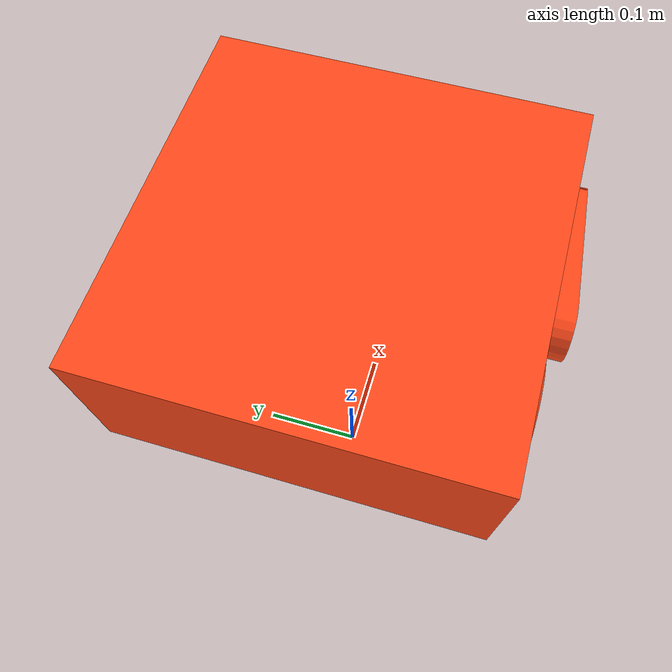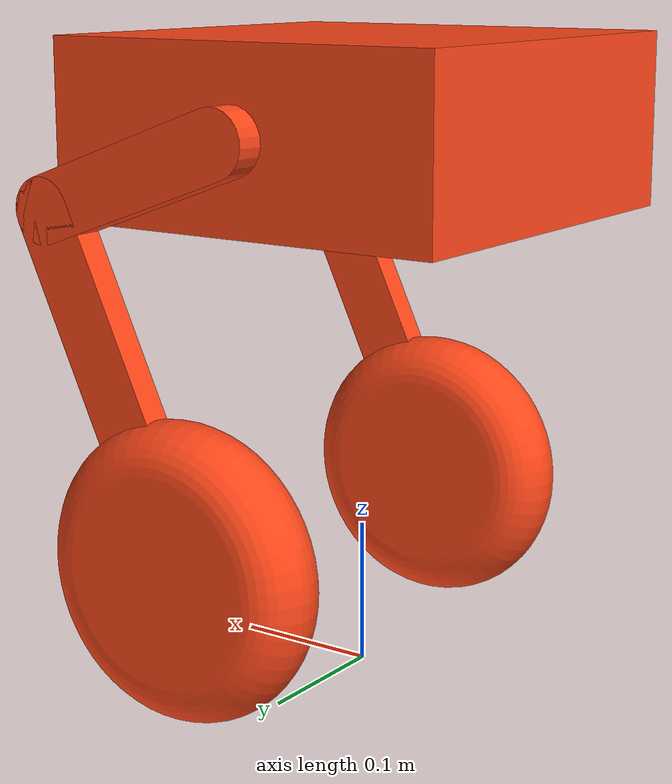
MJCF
<mujoco model="wheel_leg">
  <default>
    <default class="robot">
      <default class="motor">
        <!-- 从URDF恢复：damping=0.5, frictionloss=0.5（髋膝关节） -->
        <!-- 轮子关节(L3/R3)在URDF中damping=0, friction=0，单独在joint里设置 -->
        <joint damping="0.5" frictionloss="0.5" />
        <!-- ctrlrange放开到300（对应URDF effort=300），gear=1 -->
        <motor gear="1" ctrllimited="true" ctrlrange="-300 300" />
      </default>
      <default class="visual">
        <geom material="visualgeom" contype="0" conaffinity="0" group="2" />
      </default>
      <default class="collision">
        <geom material="collision_material" condim="3" contype="0" conaffinity="1"
              priority="1" group="1" solref="0.005 1" solimp="0.99 0.999 1e-05"
              friction="1 0.01 0.01" />
      </default>
    </default>
  </default>

  <compiler angle="radian" meshdir="../meshes_obj" />

  <asset>
    <material name="visualgeom"        rgba="0.52941 0.54902 0.54902 1" />
    <material name="default_material"  rgba="0.7 0.7 0.7 1" />
    <material name="collision_material" rgba="1.0 0.28 0.1 0.9" />
    <mesh name="base_link.obj" file="base_link.obj" />
    <mesh name="L1_link.obj"   file="L1_link.obj" />
    <mesh name="L2_link.obj"   file="L2_link.obj" />
    <mesh name="L3_link.obj"   file="L3_link.obj" />
    <mesh name="R1_link.obj"   file="R1_link.obj" />
    <mesh name="R2_link.obj"   file="R2_link.obj" />
    <mesh name="R3_link.obj"   file="R3_link.obj" />
  </asset>

  <worldbody>
    <body name="base_link" pos="0 0 0.38" quat="1 0 0 0" childclass="robot">
      <freejoint name="floating_base" />
      <!-- base_link 惯性：从URDF直接取 -->
      <inertial pos="0 0 0" quat="1 0 0 0" mass="4.6328"
                diaginertia="0.056559 0.057098 0.091137" />
      <geom name="base_link_collision" pos="0 0 0" quat="1 0 0 0"
            type="mesh" mesh="base_link.obj" class="collision" />
      <geom name="base_link_visual"    pos="0 0 0" quat="1 0 0 0"
            material="visualgeom" type="mesh" mesh="base_link.obj" class="visual" />

      <!-- ===== 左腿 ===== -->
      <!-- L1_joint: xyz="0 0.143 0" rpy="-1.5708 0.34907 0"
           => quat w=0.69636 x=-0.69637 y=0.12279 z=0.12279 -->
      <body name="L1_link" pos="0 0.143 0"
            quat="0.6963627066 -0.6963652645 0.1227890233 0.1227894743">
        <!-- L1_joint: revolute, range=-0.34905~1.22169, damping/friction由default继承 -->
        <joint name="L1_joint" type="hinge" class="motor"
               range="-0.34905 1.22169" axis="0 0 1" ref="0" />
        <inertial pos="0.075 0 0.01" quat="1 0 0 0" mass="1.3011"
                  diaginertia="0.00025247 0.0038001 0.0039659" />
        <geom name="L1_link_collision" pos="0 0 0" quat="1 0 0 0"
              type="mesh" mesh="L1_link.obj" class="collision" />
        <geom name="L1_link_visual"    pos="0 0 0" quat="1 0 0 0"
              material="visualgeom" type="mesh" mesh="L1_link.obj" class="visual" />

        <!-- L2_joint: xyz="0.15 0 0" rpy="0 0 1.6581"
             => quat w=0.67558 x=0 y=0 z=0.73729 -->
        <body name="L2_link" pos="0.15 0 0"
              quat="0.6755764902 0 0 0.7372899062">
          <!-- L2_joint: revolute, range=-1.570796~1.047197, damping/friction由default继承 -->
          <joint name="L2_joint" type="hinge" class="motor"
                 range="-1.570796 1.047197" axis="0 0 1" ref="0" />
          <inertial pos="0.125 0 0.01" quat="1 0 0 0" mass="2.0031"
                    diaginertia="0.00039433 0.013708 0.013969" />
          <geom name="L2_link_collision" pos="0 0 0" quat="1 0 0 0"
                type="mesh" mesh="L2_link.obj" class="collision" />
          <geom name="L2_link_visual"    pos="0 0 0" quat="1 0 0 0"
                material="visualgeom" type="mesh" mesh="L2_link.obj" class="visual" />

          <!-- L3_joint: xyz="0.25 0 0" rpy="0 0 -2.0071"
               => quat w=0.53731 x=0 y=0 z=-0.84338
               URDF: continuous(无限位), damping=0, friction=0 => 单独覆盖default -->
          <body name="L3_link" pos="0.25 0 0"
                quat="0.5373116856 0 0 -0.8433837517">
            <!-- 轮子关节：无限位，阻尼=0摩擦=0（覆盖default） -->
            <joint name="L3_joint" type="hinge" class="motor"
                   axis="0 0 1" damping="0" frictionloss="0" />
            <inertial pos="0 0 0.01" quat="1 0 0 0" mass="1.6268"
                      diaginertia="0.0040743 0.0040743 0.0072906" />
            <geom name="L3_link_collision" pos="0 0 0" quat="1 0 0 0"
                  type="mesh" mesh="L3_link.obj" class="collision" />
            <geom name="L3_link_visual"    pos="0 0 0" quat="1 0 0 0"
                  material="visualgeom" type="mesh" mesh="L3_link.obj" class="visual" />
          </body>
        </body>
      </body>

      <!-- ===== 右腿 ===== -->
      <!-- R1_joint: xyz="0 -0.143 0" rpy="1.5708 0.34907 0"
           => quat w=0.69636 x=0.69637 y=0.12279 z=-0.12279 -->
      <body name="R1_link" pos="0 -0.143 0"
            quat="0.6963627066 0.6963652645 0.1227890233 -0.1227894743">
        <!-- R1_joint: revolute, range=-1.22169~0.34905, damping/friction由default继承 -->
        <joint name="R1_joint" type="hinge" class="motor"
               range="-1.22169 0.34905" axis="0 0 1" ref="0" />
        <inertial pos="0.075 0 0.01" quat="1 0 0 0" mass="1.3011"
                  diaginertia="0.00025247 0.0038001 0.0039659" />
        <geom name="R1_link_collision" pos="0 0 0" quat="1 0 0 0"
              type="mesh" mesh="R1_link.obj" class="collision" />
        <geom name="R1_link_visual"    pos="0 0 0" quat="1 0 0 0"
              material="visualgeom" type="mesh" mesh="R1_link.obj" class="visual" />

        <!-- R2_joint: xyz="0.15 0 0" rpy="0 0 -1.6581"
             => quat w=0.67558 x=0 y=0 z=-0.73729 -->
        <body name="R2_link" pos="0.15 0 0"
              quat="0.6755764902 0 0 -0.7372899062">
          <!-- R2_joint: revolute, range=-1.047197~1.570796, damping/friction由default继承 -->
          <joint name="R2_joint" type="hinge" class="motor"
                 range="-1.047197 1.570796" axis="0 0 1" ref="0" />
          <inertial pos="0.125 0 0.01" quat="1 0 0 0" mass="2.0031"
                    diaginertia="0.00039433 0.013708 0.013969" />
          <geom name="R2_link_collision" pos="0 0 0" quat="1 0 0 0"
                type="mesh" mesh="R2_link.obj" class="collision" />
          <geom name="R2_link_visual"    pos="0 0 0" quat="1 0 0 0"
                material="visualgeom" type="mesh" mesh="R2_link.obj" class="visual" />

          <!-- R3_joint: xyz="0.25 0 0" rpy="0 0 2.0071"
               => quat w=0.53731 x=0 y=0 z=0.84338
               URDF: continuous(无限位), damping=0, friction=0 => 单独覆盖default -->
          <body name="R3_link" pos="0.25 0 0"
                quat="0.5373116856 0 0 0.8433837517">
            <!-- 轮子关节：无限位，阻尼=0摩擦=0（覆盖default） -->
            <joint name="R3_joint" type="hinge" class="motor"
                   axis="0 0 1" damping="0" frictionloss="0" />
            <inertial pos="0 0 0.01" quat="1 0 0 0" mass="1.6268"
                      diaginertia="0.0040743 0.0040743 0.0072906" />
            <geom name="R3_link_collision" pos="0 0 0" quat="1 0 0 0"
                  type="mesh" mesh="R3_link.obj" class="collision" />
            <geom name="R3_link_visual"    pos="0 0 0" quat="1 0 0 0"
                  material="visualgeom" type="mesh" mesh="R3_link.obj" class="visual" />
          </body>
        </body>
      </body>

      <site name="base_link_site" pos="0 0 0" quat="1 0 0 0" />
      <camera name="front_camera" mode="track" fovy="90"
              pos="0 2 0.5" quat="0 0 0.7071067812 0.7071067812" />
      <camera name="side_camera" mode="track" fovy="90"
              pos="-2 0 0.5" quat="-0.5 -0.5 0.5 0.5" />
    </body>
  </worldbody>

  <actuator>
    <motor name="L1_joint_ctrl"  joint="L1_joint"  class="motor" />
    <motor name="L2_joint_ctrl"  joint="L2_joint"  class="motor" />
    <motor name="L3_joint_ctrl"  joint="L3_joint"  class="motor" />
    <motor name="R1_joint_ctrl"  joint="R1_joint"  class="motor" />
    <motor name="R2_joint_ctrl"  joint="R2_joint"  class="motor" />
    <motor name="R3_joint_ctrl"  joint="R3_joint"  class="motor" />
  </actuator>

  <contact>
    <exclude body1="base_link" body2="L1_link" />
    <exclude body1="L1_link"   body2="L2_link" />
    <exclude body1="L2_link"   body2="L3_link" />
    <exclude body1="base_link" body2="R1_link" />
    <exclude body1="R1_link"   body2="R2_link" />
    <exclude body1="R2_link"   body2="R3_link" />
  </contact>

  <sensor>
    <framepos    name="base_link_site_pos"    objtype="site" objname="base_link_site" />
    <framequat   name="base_link_site_quat"   objtype="site" objname="base_link_site" />
    <framelinvel name="base_link_site_linvel" objtype="site" objname="base_link_site" />
    <frameangvel name="base_link_site_angvel" objtype="site" objname="base_link_site" />
    <velocimeter name="base_link_site_vel"    site="base_link_site" />
  </sensor>

</mujoco>
